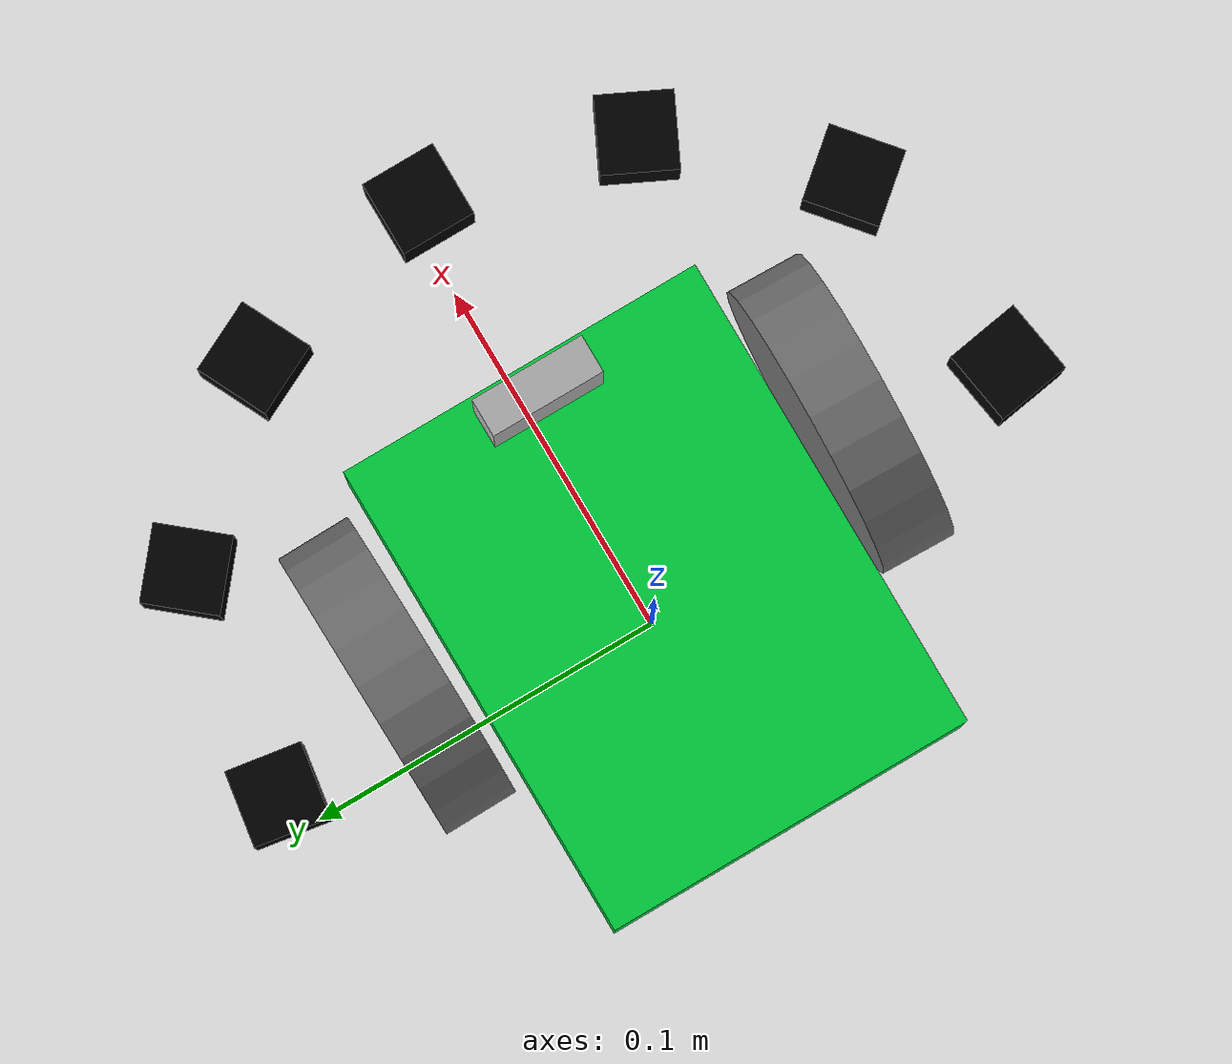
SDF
<?xml version='1.0'?>
<sdf version='1.7'>
  <model name='jetbotV21'>
    <link name='chassis'>
      <pose>-0 0 0.090953 0 -0 0</pose>
      <inertial>
        <mass>1</mass>
        <pose>0 0 0 0 -0 0</pose>
        <inertia>
          <ixx>0.001</ixx>
          <ixy>0</ixy>
          <ixz>0</ixz>
          <iyy>0.001</iyy>
          <iyz>0</iyz>
          <izz>0.0022</izz>
        </inertia>
      </inertial>
      <self_collide>0</self_collide>
      <enable_wind>0</enable_wind>
      <kinematic>0</kinematic>
      <gravity>1</gravity>
      <visual name='visual'>
        <geometry>
          <box>
            <size>0.13 0.1 0.04</size>
          </box>
        </geometry>
        <material>
          <ambient>0.5 0.5 0.5 1</ambient>
          <diffuse>0 0.85 0.25 1</diffuse>
          <specular>0 0 0 1</specular>
          <emissive>0 0 0 1</emissive>
          <shader type='pixel'>
            <normal_map>__default__</normal_map>
          </shader>
          <script>
            <name>ModelPreview_1::chassis::visual_MATERIAL_</name>
            <uri>__default__</uri>
          </script>
        </material>
        <pose>0 0 0 0 -0 0</pose>
        <transparency>0</transparency>
        <cast_shadows>1</cast_shadows>
      </visual>
      <visual name='caster_visual'>
        <pose>-0.045 0 -0.0255 0 -0 0</pose>
        <geometry>
          <sphere>
            <radius>0.02</radius>
          </sphere>
        </geometry>
        <material>
          <shader type='pixel'>
            <normal_map>__default__</normal_map>
          </shader>
          <script>
            <name>ModelPreview_1::chassis::caster_visual_MATERIAL_</name>
            <uri>__default__</uri>
          </script>
          <ambient>0 0 0 1</ambient>
          <diffuse>0 0 0 1</diffuse>
          <specular>0 0 0 1</specular>
          <emissive>0 0 0 1</emissive>
        </material>
        <transparency>0</transparency>
        <cast_shadows>1</cast_shadows>
      </visual>
      <collision name='collision'>
        <laser_retro>0</laser_retro>
        <max_contacts>10</max_contacts>
        <pose>0 0 0 0 -0 0</pose>
        <geometry>
          <box>
            <size>0.13 0.1 0.04</size>
          </box>
        </geometry>
        <surface>
          <friction>
            <ode>
              <mu>1</mu>
              <mu2>1</mu2>
              <fdir1>0 0 0</fdir1>
              <slip1>0</slip1>
              <slip2>0</slip2>
            </ode>
            <torsional>
              <coefficient>1</coefficient>
              <patch_radius>0</patch_radius>
              <surface_radius>0</surface_radius>
              <use_patch_radius>1</use_patch_radius>
              <ode>
                <slip>0</slip>
              </ode>
            </torsional>
          </friction>
          <bounce>
            <restitution_coefficient>0</restitution_coefficient>
            <threshold>1e+06</threshold>
          </bounce>
          <contact>
            <collide_without_contact>0</collide_without_contact>
            <collide_without_contact_bitmask>1</collide_without_contact_bitmask>
            <collide_bitmask>1</collide_bitmask>
            <ode>
              <soft_cfm>0</soft_cfm>
              <soft_erp>0.2</soft_erp>
              <kp>1e+07</kp>
              <kd>10</kd>
              <max_vel>0.1</max_vel>
              <min_depth>0.001</min_depth>
            </ode>
            <bullet>
              <split_impulse>1</split_impulse>
              <split_impulse_penetration_threshold>-0.01</split_impulse_penetration_threshold>
              <soft_cfm>0</soft_cfm>
              <soft_erp>0.2</soft_erp>
              <kp>1e+07</kp>
              <kd>10</kd>
            </bullet>
          </contact>
        </surface>
      </collision>
      <collision name='caster_collision'>
        <laser_retro>0</laser_retro>
        <max_contacts>10</max_contacts>
        <pose>-0.045 0 -0.0255 0 -0 0</pose>
        <geometry>
          <sphere>
            <radius>0.02</radius>
          </sphere>
        </geometry>
        <surface>
          <friction>
            <ode>
              <mu>0.05</mu>
              <mu2>0.05</mu2>
              <fdir1>0 0 0</fdir1>
              <slip1>0.2</slip1>
              <slip2>0.2</slip2>
            </ode>
            <torsional>
              <coefficient>1</coefficient>
              <patch_radius>0</patch_radius>
              <surface_radius>0</surface_radius>
              <use_patch_radius>1</use_patch_radius>
              <ode>
                <slip>0</slip>
              </ode>
            </torsional>
          </friction>
          <bounce>
            <restitution_coefficient>0</restitution_coefficient>
            <threshold>1e+06</threshold>
          </bounce>
          <contact>
            <collide_without_contact>0</collide_without_contact>
            <collide_without_contact_bitmask>1</collide_without_contact_bitmask>
            <collide_bitmask>1</collide_bitmask>
            <ode>
              <soft_cfm>1e-05</soft_cfm>
              <soft_erp>0.2</soft_erp>
              <kp>1e+06</kp>
              <kd>10</kd>
              <max_vel>0.1</max_vel>
              <min_depth>0.001</min_depth>
            </ode>
            <bullet>
              <split_impulse>1</split_impulse>
              <split_impulse_penetration_threshold>-0.01</split_impulse_penetration_threshold>
              <soft_cfm>1e-05</soft_cfm>
              <soft_erp>0.2</soft_erp>
              <kp>1e+06</kp>
              <kd>10</kd>
            </bullet>
          </contact>
        </surface>
      </collision>
    </link>
    <link name='left_wheel'>
      <pose>0.01713 0.063907 0.083835 -0.190935 1.57071 1.39626</pose>
      <self_collide>0</self_collide>
      <inertial>
        <pose>0 0 0 0 -0 0</pose>
        <inertia>
          <ixx>5e-05</ixx>
          <ixy>0</ixy>
          <ixz>0</ixz>
          <iyy>5e-05</iyy>
          <iyz>0</iyz>
          <izz>5e-05</izz>
        </inertia>
        <mass>0.08</mass>
      </inertial>
      <enable_wind>0</enable_wind>
      <kinematic>0</kinematic>
      <gravity>1</gravity>
      <visual name='visual'>
        <geometry>
          <cylinder>
            <radius>0.04</radius>
            <length>0.02</length>
          </cylinder>
        </geometry>
        <material>
          <ambient>0.35 0.35 0.35 1</ambient>
          <diffuse>0.45 0.45 0.45 1</diffuse>
          <specular>0 0 0 1</specular>
          <emissive>0 0 0 1</emissive>
          <shader type='pixel'>
            <normal_map>__default__</normal_map>
          </shader>
          <script>
            <name>ModelPreview_1::left_wheel::visual_MATERIAL_</name>
            <uri>__default__</uri>
          </script>
        </material>
        <pose>0 0 0 0 -0 0</pose>
        <transparency>0</transparency>
        <cast_shadows>1</cast_shadows>
      </visual>
      <collision name='collision'>
        <laser_retro>0</laser_retro>
        <max_contacts>10</max_contacts>
        <pose>0 0 0 0 -0 0</pose>
        <geometry>
          <cylinder>
            <radius>0.04</radius>
            <length>0.02</length>
          </cylinder>
        </geometry>
        <surface>
          <friction>
            <ode>
              <mu>1</mu>
              <mu2>1</mu2>
              <fdir1>0 0 0</fdir1>
              <slip1>0</slip1>
              <slip2>0</slip2>
            </ode>
            <torsional>
              <coefficient>1</coefficient>
              <patch_radius>0</patch_radius>
              <surface_radius>0</surface_radius>
              <use_patch_radius>1</use_patch_radius>
              <ode>
                <slip>0</slip>
              </ode>
            </torsional>
          </friction>
          <bounce>
            <restitution_coefficient>0</restitution_coefficient>
            <threshold>1e+06</threshold>
          </bounce>
          <contact>
            <collide_without_contact>0</collide_without_contact>
            <collide_without_contact_bitmask>1</collide_without_contact_bitmask>
            <collide_bitmask>1</collide_bitmask>
            <ode>
              <soft_cfm>1e-05</soft_cfm>
              <soft_erp>0.2</soft_erp>
              <kp>1e+06</kp>
              <kd>10</kd>
              <max_vel>0.1</max_vel>
              <min_depth>0.001</min_depth>
            </ode>
            <bullet>
              <split_impulse>1</split_impulse>
              <split_impulse_penetration_threshold>-0.01</split_impulse_penetration_threshold>
              <soft_cfm>1e-05</soft_cfm>
              <soft_erp>0.2</soft_erp>
              <kp>1e+06</kp>
              <kd>10</kd>
            </bullet>
          </contact>
        </surface>
      </collision>
    </link>
    <link name='right_wheel'>
      <pose>0.01713 -0.063907 0.083835 -0.145297 1.57071 1.39626</pose>
      <self_collide>0</self_collide>
      <inertial>
        <pose>0 0 0 0 -0 0</pose>
        <inertia>
          <ixx>5e-05</ixx>
          <ixy>0</ixy>
          <ixz>0</ixz>
          <iyy>5e-05</iyy>
          <iyz>0</iyz>
          <izz>5e-05</izz>
        </inertia>
        <mass>0.08</mass>
      </inertial>
      <enable_wind>0</enable_wind>
      <kinematic>0</kinematic>
      <gravity>1</gravity>
      <visual name='visual'>
        <geometry>
          <cylinder>
            <radius>0.04</radius>
            <length>0.02</length>
          </cylinder>
        </geometry>
        <material>
          <ambient>0.35 0.35 0.35 1</ambient>
          <diffuse>0.45 0.45 0.45 1</diffuse>
          <specular>0 0 0 1</specular>
          <emissive>0 0 0 1</emissive>
          <shader type='pixel'>
            <normal_map>__default__</normal_map>
          </shader>
          <script>
            <name>ModelPreview_1::right_wheel::visual_MATERIAL_</name>
            <uri>__default__</uri>
          </script>
        </material>
        <pose>0 0 0 0 -0 0</pose>
        <transparency>0</transparency>
        <cast_shadows>1</cast_shadows>
      </visual>
      <collision name='collision'>
        <laser_retro>0</laser_retro>
        <max_contacts>10</max_contacts>
        <pose>0 0 0 0 -0 0</pose>
        <geometry>
          <cylinder>
            <radius>0.04</radius>
            <length>0.02</length>
          </cylinder>
        </geometry>
        <surface>
          <friction>
            <ode>
              <mu>1</mu>
              <mu2>1</mu2>
              <fdir1>0 0 0</fdir1>
              <slip1>0</slip1>
              <slip2>0</slip2>
            </ode>
            <torsional>
              <coefficient>1</coefficient>
              <patch_radius>0</patch_radius>
              <surface_radius>0</surface_radius>
              <use_patch_radius>1</use_patch_radius>
              <ode>
                <slip>0</slip>
              </ode>
            </torsional>
          </friction>
          <bounce>
            <restitution_coefficient>0</restitution_coefficient>
            <threshold>1e+06</threshold>
          </bounce>
          <contact>
            <collide_without_contact>0</collide_without_contact>
            <collide_without_contact_bitmask>1</collide_without_contact_bitmask>
            <collide_bitmask>1</collide_bitmask>
            <ode>
              <soft_cfm>1e-05</soft_cfm>
              <soft_erp>0.2</soft_erp>
              <kp>1e+06</kp>
              <kd>10</kd>
              <max_vel>0.1</max_vel>
              <min_depth>0.001</min_depth>
            </ode>
            <bullet>
              <split_impulse>1</split_impulse>
              <split_impulse_penetration_threshold>-0.01</split_impulse_penetration_threshold>
              <soft_cfm>1e-05</soft_cfm>
              <soft_erp>0.2</soft_erp>
              <kp>1e+06</kp>
              <kd>10</kd>
            </bullet>
          </contact>
        </surface>
      </collision>
    </link>
    <link name='ultrasonic_front_link'>
      <pose>0.113841 0 0.098848 0 -0 0</pose>
      <sensor name='ultrasonic_front' type='ray'>
        <pose>0 0 0 0 -0 0</pose>
        <always_on>1</always_on>
        <visualize>1</visualize>
        <update_rate>30</update_rate>
        <ray>
          <scan>
            <horizontal>
              <samples>4</samples>
              <min_angle>-0.174533</min_angle>
              <max_angle>0.174533</max_angle>
              <resolution>1</resolution>
              <angle_increment>0.0698131701</angle_increment>
            </horizontal>
            <vertical>
              <samples>4</samples>
              <min_angle>-0.0349066</min_angle>
              <max_angle>0.0349066</max_angle>
              <angle_increment>0.004363323</angle_increment>
            </vertical>
          </scan>
          <range>
            <min>0.1</min>
            <max>8</max>
            <resolution>0.2</resolution>
          </range>
          <noise>
            <type>gaussian</type>
            <mean>0</mean>
            <stddev>0.05</stddev>
          </noise>
        </ray>
        <plugin name='gazebo_ros_range_front' filename='libgazebo_ros_ray_sensor.so'>
          <ros>
            <remapping>~/out:=ultrasonic_front</remapping>
            <namespace>jetbotV21</namespace>
          </ros>
          <output_type>sensor_msgs/Range</output_type>
          <frame_name>ultrasonic_front_link</frame_name>
          <topic>/jetbot/ultrasonic_front</topic>
        </plugin>
      </sensor>
      <self_collide>0</self_collide>
      <inertial>
        <pose>0 0 0 0 -0 0</pose>
        <inertia>
          <ixx>1e-06</ixx>
          <ixy>0</ixy>
          <ixz>0</ixz>
          <iyy>1e-06</iyy>
          <iyz>0</iyz>
          <izz>1e-06</izz>
        </inertia>
        <mass>0.001</mass>
      </inertial>
      <enable_wind>0</enable_wind>
      <kinematic>0</kinematic>
      <gravity>1</gravity>
      <visual name='visual'>
        <geometry>
          <box>
            <size>0.02 0.02 0.02</size>
          </box>
        </geometry>
        <material>
          <ambient>0 0 1 1</ambient>
          <shader type='pixel'>
            <normal_map>__default__</normal_map>
          </shader>
          <script>
            <name>ModelPreview_1::ultrasonic_front_link::visual_MATERIAL_</name>
            <uri>__default__</uri>
          </script>
          <diffuse>0 0 0 1</diffuse>
          <specular>0 0 0 1</specular>
          <emissive>0 0 0 1</emissive>
        </material>
        <pose>0 0 0 0 -0 0</pose>
        <transparency>0</transparency>
        <cast_shadows>1</cast_shadows>
      </visual>
    </link>
    <link name='ultrasonic_left_0_link'>
      <pose>0.100627 0.05457 0.098848 0 -0 0.454399</pose>
      <sensor name='ultrasonic_left_0' type='ray'>
        <pose>0 0 0 0 -0 0</pose>
        <always_on>1</always_on>
        <visualize>1</visualize>
        <update_rate>30</update_rate>
        <ray>
          <scan>
            <horizontal>
              <samples>4</samples>
              <min_angle>-0.174533</min_angle>
              <max_angle>0.174533</max_angle>
              <resolution>1</resolution>
              <angle_increment>0.0698131701</angle_increment>
            </horizontal>
            <vertical>
              <samples>4</samples>
              <min_angle>-0.0349066</min_angle>
              <max_angle>0.0349066</max_angle>
              <angle_increment>0.004363323</angle_increment>
            </vertical>
          </scan>
          <range>
            <min>0.1</min>
            <max>8</max>
            <resolution>0.2</resolution>
          </range>
          <noise>
            <type>gaussian</type>
            <mean>0</mean>
            <stddev>0.05</stddev>
          </noise>
        </ray>
        <plugin name='gazebo_ros_range_left_0' filename='libgazebo_ros_ray_sensor.so'>
          <ros>
            <remapping>~/out:=ultrasonic_left_0</remapping>
            <namespace>jetbotV21</namespace>
          </ros>
          <output_type>sensor_msgs/Range</output_type>
          <frame_name>ultrasonic_left_0_link</frame_name>
        </plugin>
      </sensor>
      <self_collide>0</self_collide>
      <inertial>
        <pose>0 0 0 0 -0 0</pose>
        <inertia>
          <ixx>1e-06</ixx>
          <ixy>0</ixy>
          <ixz>0</ixz>
          <iyy>1e-06</iyy>
          <iyz>0</iyz>
          <izz>1e-06</izz>
        </inertia>
        <mass>0.001</mass>
      </inertial>
      <enable_wind>0</enable_wind>
      <kinematic>0</kinematic>
      <gravity>1</gravity>
      <visual name='visual'>
        <geometry>
          <box>
            <size>0.02 0.02 0.02</size>
          </box>
        </geometry>
        <material>
          <ambient>1 0 0 1</ambient>
          <shader type='pixel'>
            <normal_map>__default__</normal_map>
          </shader>
          <script>
            <name>ModelPreview_1::ultrasonic_left_0_link::visual_MATERIAL_</name>
            <uri>__default__</uri>
          </script>
          <diffuse>0 0 0 1</diffuse>
          <specular>0 0 0 1</specular>
          <emissive>0 0 0 1</emissive>
        </material>
        <pose>0 0 0 0 -0 0</pose>
        <transparency>0</transparency>
        <cast_shadows>1</cast_shadows>
      </visual>
    </link>
    <link name='ultrasonic_left_1_link'>
      <pose>0.0643 0.09502 0.098848 0 -0 0.873931</pose>
      <sensor name='ultrasonic_left_1' type='ray'>
        <pose>0 0 0 0 -0 0</pose>
        <always_on>1</always_on>
        <visualize>1</visualize>
        <update_rate>30</update_rate>
        <ray>
          <scan>
            <horizontal>
              <samples>4</samples>
              <min_angle>-0.174533</min_angle>
              <max_angle>0.174533</max_angle>
              <resolution>1</resolution>
              <angle_increment>0.0698131701</angle_increment>
            </horizontal>
            <vertical>
              <samples>4</samples>
              <min_angle>-0.0349066</min_angle>
              <max_angle>0.0349066</max_angle>
              <angle_increment>0.004363323</angle_increment>
            </vertical>
          </scan>
          <range>
            <min>0.1</min>
            <max>8</max>
            <resolution>0.2</resolution>
          </range>
          <noise>
            <type>gaussian</type>
            <mean>0</mean>
            <stddev>0.05</stddev>
          </noise>
        </ray>
        <plugin name='gazebo_ros_range_left_1' filename='libgazebo_ros_ray_sensor.so'>
          <ros>
            <remapping>~/out:=ultrasonic_left_1</remapping>
            <namespace>jetbotV21</namespace>
          </ros>
          <output_type>sensor_msgs/Range</output_type>
          <frame_name>ultrasonic_left_1_link</frame_name>
        </plugin>
      </sensor>
      <self_collide>0</self_collide>
      <inertial>
        <pose>0 0 0 0 -0 0</pose>
        <inertia>
          <ixx>1e-06</ixx>
          <ixy>0</ixy>
          <ixz>0</ixz>
          <iyy>1e-06</iyy>
          <iyz>0</iyz>
          <izz>1e-06</izz>
        </inertia>
        <mass>0.001</mass>
      </inertial>
      <enable_wind>0</enable_wind>
      <kinematic>0</kinematic>
      <gravity>1</gravity>
      <visual name='visual'>
        <geometry>
          <box>
            <size>0.02 0.02 0.02</size>
          </box>
        </geometry>
        <material>
          <ambient>1 0 0 1</ambient>
          <shader type='pixel'>
            <normal_map>__default__</normal_map>
          </shader>
          <script>
            <name>ModelPreview_1::ultrasonic_left_1_link::visual_MATERIAL_</name>
            <uri>__default__</uri>
          </script>
          <diffuse>0 0 0 1</diffuse>
          <specular>0 0 0 1</specular>
          <emissive>0 0 0 1</emissive>
        </material>
        <pose>0 0 0 0 -0 0</pose>
        <transparency>0</transparency>
        <cast_shadows>1</cast_shadows>
      </visual>
    </link>
    <link name='ultrasonic_left_2_link'>
      <pose>0.005425 0.103814 0.098848 0 -0 1.41232</pose>
      <sensor name='ultrasonic_left_2' type='ray'>
        <pose>0 0 0 0 -0 0</pose>
        <always_on>1</always_on>
        <visualize>1</visualize>
        <update_rate>30</update_rate>
        <ray>
          <scan>
            <horizontal>
              <samples>4</samples>
              <min_angle>-0.174533</min_angle>
              <max_angle>0.174533</max_angle>
              <resolution>1</resolution>
              <angle_increment>0.0698131701</angle_increment>
            </horizontal>
            <vertical>
              <samples>4</samples>
              <min_angle>-0.0349066</min_angle>
              <max_angle>0.0349066</max_angle>
              <angle_increment>0.004363323</angle_increment>
            </vertical>
          </scan>
          <range>
            <min>0.1</min>
            <max>8</max>
            <resolution>0.2</resolution>
          </range>
          <noise>
            <type>gaussian</type>
            <mean>0</mean>
            <stddev>0.05</stddev>
          </noise>
        </ray>
        <plugin name='gazebo_ros_range_left_2' filename='libgazebo_ros_ray_sensor.so'>
          <ros>
            <remapping>~/out:=ultrasonic_left_2</remapping>
            <namespace>jetbotV21</namespace>
          </ros>
          <output_type>sensor_msgs/Range</output_type>
          <frame_name>ultrasonic_left_2_link</frame_name>
        </plugin>
      </sensor>
      <self_collide>0</self_collide>
      <inertial>
        <pose>0 0 0 0 -0 0</pose>
        <inertia>
          <ixx>1e-06</ixx>
          <ixy>0</ixy>
          <ixz>0</ixz>
          <iyy>1e-06</iyy>
          <iyz>0</iyz>
          <izz>1e-06</izz>
        </inertia>
        <mass>0.001</mass>
      </inertial>
      <enable_wind>0</enable_wind>
      <kinematic>0</kinematic>
      <gravity>1</gravity>
      <visual name='visual'>
        <geometry>
          <box>
            <size>0.02 0.02 0.02</size>
          </box>
        </geometry>
        <material>
          <ambient>1 0 0 1</ambient>
          <shader type='pixel'>
            <normal_map>__default__</normal_map>
          </shader>
          <script>
            <name>ModelPreview_1::ultrasonic_left_2_link::visual_MATERIAL_</name>
            <uri>__default__</uri>
          </script>
          <diffuse>0 0 0 1</diffuse>
          <specular>0 0 0 1</specular>
          <emissive>0 0 0 1</emissive>
        </material>
        <pose>0 0 0 0 -0 0</pose>
        <transparency>0</transparency>
        <cast_shadows>1</cast_shadows>
      </visual>
    </link>
    <link name='ultrasonic_right_0_link'>
      <pose>0.100627 -0.05457 0.098848 0 0 -0.454399</pose>
      <sensor name='ultrasonic_right_0' type='ray'>
        <pose>0 0 0 0 -0 0</pose>
        <always_on>1</always_on>
        <visualize>1</visualize>
        <update_rate>30</update_rate>
        <ray>
          <scan>
            <horizontal>
              <samples>4</samples>
              <min_angle>-0.174533</min_angle>
              <max_angle>0.174533</max_angle>
              <resolution>1</resolution>
              <angle_increment>0.0698131701</angle_increment>
            </horizontal>
            <vertical>
              <samples>4</samples>
              <min_angle>-0.0349066</min_angle>
              <max_angle>0.0349066</max_angle>
              <angle_increment>0.004363323</angle_increment>
            </vertical>
          </scan>
          <range>
            <min>0.1</min>
            <max>8</max>
            <resolution>0.2</resolution>
          </range>
          <noise>
            <type>gaussian</type>
            <mean>0</mean>
            <stddev>0.05</stddev>
          </noise>
        </ray>
        <plugin name='gazebo_ros_range_right_0' filename='libgazebo_ros_ray_sensor.so'>
          <ros>
            <remapping>~/out:=ultrasonic_right_0</remapping>
            <namespace>jetbotV21</namespace>
          </ros>
          <output_type>sensor_msgs/Range</output_type>
          <frame_name>ultrasonic_right_0_link</frame_name>
          <topic>/jetbot/ultrasonic_right_0</topic>
        </plugin>
      </sensor>
      <self_collide>0</self_collide>
      <inertial>
        <pose>0 0 0 0 -0 0</pose>
        <inertia>
          <ixx>1e-06</ixx>
          <ixy>0</ixy>
          <ixz>0</ixz>
          <iyy>1e-06</iyy>
          <iyz>0</iyz>
          <izz>1e-06</izz>
        </inertia>
        <mass>0.001</mass>
      </inertial>
      <enable_wind>0</enable_wind>
      <kinematic>0</kinematic>
      <gravity>1</gravity>
      <visual name='visual'>
        <geometry>
          <box>
            <size>0.02 0.02 0.02</size>
          </box>
        </geometry>
        <material>
          <ambient>0 1 0 1</ambient>
          <shader type='pixel'>
            <normal_map>__default__</normal_map>
          </shader>
          <script>
            <name>ModelPreview_1::ultrasonic_right_0_link::visual_MATERIAL_</name>
            <uri>__default__</uri>
          </script>
          <diffuse>0 0 0 1</diffuse>
          <specular>0 0 0 1</specular>
          <emissive>0 0 0 1</emissive>
        </material>
        <pose>0 0 0 0 -0 0</pose>
        <transparency>0</transparency>
        <cast_shadows>1</cast_shadows>
      </visual>
    </link>
    <link name='ultrasonic_right_1_link'>
      <pose>0.0643 -0.09502 0.098848 0 0 -0.873931</pose>
      <sensor name='ultrasonic_right_1' type='ray'>
        <pose>0 0 0 0 -0 0</pose>
        <always_on>1</always_on>
        <visualize>1</visualize>
        <update_rate>30</update_rate>
        <ray>
          <scan>
            <horizontal>
              <samples>4</samples>
              <min_angle>-0.174533</min_angle>
              <max_angle>0.174533</max_angle>
              <resolution>1</resolution>
              <angle_increment>0.0698131701</angle_increment>
            </horizontal>
            <vertical>
              <samples>4</samples>
              <min_angle>-0.0349066</min_angle>
              <max_angle>0.0349066</max_angle>
              <angle_increment>0.004363323</angle_increment>
            </vertical>
          </scan>
          <range>
            <min>0.1</min>
            <max>8</max>
            <resolution>0.2</resolution>
          </range>
          <noise>
            <type>gaussian</type>
            <mean>0</mean>
            <stddev>0.05</stddev>
          </noise>
        </ray>
        <plugin name='gazebo_ros_range_right_1' filename='libgazebo_ros_ray_sensor.so'>
          <ros>
            <remapping>~/out:=ultrasonic_right_1</remapping>
            <namespace>jetbotV21</namespace>
          </ros>
          <output_type>sensor_msgs/Range</output_type>
          <frame_name>ultrasonic_right_1_link</frame_name>
          <topic>/jetbot/ultrasonic_right_1</topic>
        </plugin>
      </sensor>
      <self_collide>0</self_collide>
      <inertial>
        <pose>0 0 0 0 -0 0</pose>
        <inertia>
          <ixx>1e-06</ixx>
          <ixy>0</ixy>
          <ixz>0</ixz>
          <iyy>1e-06</iyy>
          <iyz>0</iyz>
          <izz>1e-06</izz>
        </inertia>
        <mass>0.001</mass>
      </inertial>
      <enable_wind>0</enable_wind>
      <kinematic>0</kinematic>
      <gravity>1</gravity>
      <visual name='visual'>
        <geometry>
          <box>
            <size>0.02 0.02 0.02</size>
          </box>
        </geometry>
        <material>
          <ambient>0 1 0 1</ambient>
          <shader type='pixel'>
            <normal_map>__default__</normal_map>
          </shader>
          <script>
            <name>ModelPreview_1::ultrasonic_right_1_link::visual_MATERIAL_</name>
            <uri>__default__</uri>
          </script>
          <diffuse>0 0 0 1</diffuse>
          <specular>0 0 0 1</specular>
          <emissive>0 0 0 1</emissive>
        </material>
        <pose>0 0 0 0 -0 0</pose>
        <transparency>0</transparency>
        <cast_shadows>1</cast_shadows>
      </visual>
    </link>
    <link name='ultrasonic_right_2_link'>
      <pose>0.005425 -0.103814 0.098848 0 -0 -1.41232</pose>
      <sensor name='ultrasonic_right_2' type='ray'>
        <pose>0 0 0 0 -0 0</pose>
        <always_on>1</always_on>
        <visualize>1</visualize>
        <update_rate>30</update_rate>
        <ray>
          <scan>
            <horizontal>
              <samples>4</samples>
              <min_angle>-0.174533</min_angle>
              <max_angle>0.174533</max_angle>
              <resolution>1</resolution>
              <angle_increment>0.0698131701</angle_increment>
            </horizontal>
            <vertical>
              <samples>4</samples>
              <min_angle>-0.0349066</min_angle>
              <max_angle>0.0349066</max_angle>
              <angle_increment>0.004363323</angle_increment>
            </vertical>
          </scan>
          <range>
            <min>0.1</min>
            <max>8</max>
            <resolution>0.2</resolution>
          </range>
          <noise>
            <type>gaussian</type>
            <mean>0</mean>
            <stddev>0.05</stddev>
          </noise>
        </ray>
        <plugin name='gazebo_ros_range_right_2' filename='libgazebo_ros_ray_sensor.so'>
          <ros>
            <remapping>~/out:=ultrasonic_right_2</remapping>
            <namespace>jetbotV21</namespace>
          </ros>
          <output_type>sensor_msgs/Range</output_type>
          <frame_name>ultrasonic_right_2_link</frame_name>
          <topic>/jetbot/ultrasonic_right_2</topic>
        </plugin>
      </sensor>
      <self_collide>0</self_collide>
      <inertial>
        <pose>0 0 0 0 -0 0</pose>
        <inertia>
          <ixx>1e-06</ixx>
          <ixy>0</ixy>
          <ixz>0</ixz>
          <iyy>1e-06</iyy>
          <iyz>0</iyz>
          <izz>1e-06</izz>
        </inertia>
        <mass>0.001</mass>
      </inertial>
      <enable_wind>0</enable_wind>
      <kinematic>0</kinematic>
      <gravity>1</gravity>
      <visual name='visual'>
        <geometry>
          <box>
            <size>0.02 0.02 0.02</size>
          </box>
        </geometry>
        <material>
          <ambient>0 1 0 1</ambient>
          <shader type='pixel'>
            <normal_map>__default__</normal_map>
          </shader>
          <script>
            <name>ModelPreview_1::ultrasonic_right_2_link::visual_MATERIAL_</name>
            <uri>__default__</uri>
          </script>
          <diffuse>0 0 0 1</diffuse>
          <specular>0 0 0 1</specular>
          <emissive>0 0 0 1</emissive>
        </material>
        <pose>0 0 0 0 -0 0</pose>
        <transparency>0</transparency>
        <cast_shadows>1</cast_shadows>
      </visual>
    </link>
    <model name='camera'>
      <pose>0.05311 0.00127 0.165276 0 0 0</pose>
      <link name='link'>
        <inertial>
          <mass>0.001</mass>
          <inertia>
            <ixx>1e-06</ixx>
            <iyy>1e-06</iyy>
            <izz>1e-06</izz>
            <ixy>0</ixy>
            <ixz>0</ixz>
            <iyz>0</iyz>
          </inertia>
        </inertial>
        <collision name='collision'>
          <geometry>
            <box>
              <size>0.01 0.03 0.03</size>
            </box>
          </geometry>
        </collision>
        <visual name='visual'>
          <geometry>
            <box>
              <size>0.01 0.03 0.03</size>
            </box>
          </geometry>
        </visual>
        <sensor name='camera' type='camera'>
          <camera>
            <horizontal_fov>1.57</horizontal_fov>
            <image>
              <width>640</width>
              <height>480</height>
              <format>R8G8B8</format>
            </image>
            <clip>
              <near>0.05</near>
              <far>100</far>
            </clip>
          </camera>
          <always_on>1</always_on>
          <update_rate>20</update_rate>
          <visualize>1</visualize>
          <plugin name="jetbot_camera_plugin" filename="libgazebo_ros_camera.so">
            <ros>
              <namespace>/jetbotV21</namespace>
              <remapping>image_raw:=image_raw</remapping>
              <remapping>camera_info:=camera_info</remapping>
            </ros>
            <camera_name>camera</camera_name>
            <frame_name>camera_link</frame_name>
          </plugin>
        </sensor>
      </link>
    </model>
    <joint name='chassis_JOINT_0' type='fixed'>
      <parent>chassis</parent>
      <child>camera::link</child>
      <pose>0 0 0 0 -0 0</pose>
      <physics>
        <ode>
          <limit>
            <cfm>0</cfm>
            <erp>0.2</erp>
          </limit>
          <suspension>
            <cfm>0</cfm>
            <erp>0.2</erp>
          </suspension>
        </ode>
      </physics>
    </joint>
    <joint name='left_wheel_hinge' type='revolute'>
      <parent>chassis</parent>
      <child>left_wheel</child>
      <pose>0 0 -0.03 0 -0 0</pose>
      <axis>
        <xyz>9.6e-05 9.6e-05 1</xyz>
        <limit>
          <lower>-1e+16</lower>
          <upper>1e+16</upper>
          <effort>-1</effort>
          <velocity>-1</velocity>
        </limit>
        <dynamics>
          <spring_reference>0</spring_reference>
          <spring_stiffness>0</spring_stiffness>
          <damping>0.02</damping>
          <friction>0.001</friction>
        </dynamics>
      </axis>
      <physics>
        <ode>
          <limit>
            <cfm>0</cfm>
            <erp>0.2</erp>
          </limit>
          <suspension>
            <cfm>0</cfm>
            <erp>0.2</erp>
          </suspension>
        </ode>
      </physics>
    </joint>
    <joint name='right_wheel_hinge' type='revolute'>
      <parent>chassis</parent>
      <child>right_wheel</child>
      <pose>0 0 0.03 0 -0 0</pose>
      <axis>
        <xyz>9.6e-05 9.6e-05 1</xyz>
        <limit>
          <lower>-1e+16</lower>
          <upper>1e+16</upper>
          <effort>-1</effort>
          <velocity>-1</velocity>
        </limit>
        <dynamics>
          <spring_reference>0</spring_reference>
          <spring_stiffness>0</spring_stiffness>
          <damping>0.02</damping>
          <friction>0.001</friction>
        </dynamics>
      </axis>
      <physics>
        <ode>
          <limit>
            <cfm>0</cfm>
            <erp>0.2</erp>
          </limit>
          <suspension>
            <cfm>0</cfm>
            <erp>0.2</erp>
          </suspension>
        </ode>
      </physics>
    </joint>
    <joint name='ultrasonic_front_joint' type='fixed'>
      <parent>chassis</parent>
      <child>ultrasonic_front_link</child>
      <pose>0 0 0 0 -0 0</pose>
      <physics>
        <ode>
          <limit>
            <cfm>0</cfm>
            <erp>0.2</erp>
          </limit>
          <suspension>
            <cfm>0</cfm>
            <erp>0.2</erp>
          </suspension>
        </ode>
      </physics>
    </joint>
    <joint name='ultrasonic_left_0_joint' type='fixed'>
      <parent>chassis</parent>
      <child>ultrasonic_left_0_link</child>
      <pose>0 0 0 0 -0 0</pose>
      <physics>
        <ode>
          <limit>
            <cfm>0</cfm>
            <erp>0.2</erp>
          </limit>
          <suspension>
            <cfm>0</cfm>
            <erp>0.2</erp>
          </suspension>
        </ode>
      </physics>
    </joint>
    <joint name='ultrasonic_left_1_joint' type='fixed'>
      <parent>chassis</parent>
      <child>ultrasonic_left_1_link</child>
      <pose>0 0 0 0 -0 0</pose>
      <physics>
        <ode>
          <limit>
            <cfm>0</cfm>
            <erp>0.2</erp>
          </limit>
          <suspension>
            <cfm>0</cfm>
            <erp>0.2</erp>
          </suspension>
        </ode>
      </physics>
    </joint>
    <joint name='ultrasonic_left_2_joint' type='fixed'>
      <parent>chassis</parent>
      <child>ultrasonic_left_2_link</child>
      <pose>0 0 0 0 -0 0</pose>
      <physics>
        <ode>
          <limit>
            <cfm>0</cfm>
            <erp>0.2</erp>
          </limit>
          <suspension>
            <cfm>0</cfm>
            <erp>0.2</erp>
          </suspension>
        </ode>
      </physics>
    </joint>
    <joint name='ultrasonic_right_0_joint' type='fixed'>
      <parent>chassis</parent>
      <child>ultrasonic_right_0_link</child>
      <pose>0 0 0 0 -0 0</pose>
      <physics>
        <ode>
          <limit>
            <cfm>0</cfm>
            <erp>0.2</erp>
          </limit>
          <suspension>
            <cfm>0</cfm>
            <erp>0.2</erp>
          </suspension>
        </ode>
      </physics>
    </joint>
    <joint name='ultrasonic_right_1_joint' type='fixed'>
      <parent>chassis</parent>
      <child>ultrasonic_right_1_link</child>
      <pose>0 0 0 0 -0 0</pose>
      <physics>
        <ode>
          <limit>
            <cfm>0</cfm>
            <erp>0.2</erp>
          </limit>
          <suspension>
            <cfm>0</cfm>
            <erp>0.2</erp>
          </suspension>
        </ode>
      </physics>
    </joint>
    <joint name='ultrasonic_right_2_joint' type='fixed'>
      <parent>chassis</parent>
      <child>ultrasonic_right_2_link</child>
      <pose>0 0 0 0 -0 0</pose>
      <physics>
        <ode>
          <limit>
            <cfm>0</cfm>
            <erp>0.2</erp>
          </limit>
          <suspension>
            <cfm>0</cfm>
            <erp>0.2</erp>
          </suspension>
        </ode>
      </physics>
    </joint>
    <static>0</static>
    <allow_auto_disable>1</allow_auto_disable>
    <plugin name='diff_drive' filename='libgazebo_ros_diff_drive.so'>
      <ros>
        <namespace>jetbotV21</namespace>
        <remapping>cmd_vel:=cmd_vel</remapping>
        <remapping>odom:=odom</remapping>
      </ros>
      <left_joint>left_wheel_hinge</left_joint>
      <right_joint>right_wheel_hinge</right_joint>
      <wheel_separation>0.1278</wheel_separation>
      <wheel_diameter>0.08</wheel_diameter>
      <max_wheel_torque>1.5</max_wheel_torque>
      <max_wheel_acceleration>0.25</max_wheel_acceleration>
      <publish_odom>1</publish_odom>
      <publish_odom_tf>1</publish_odom_tf>
      <publish_wheel_tf>1</publish_wheel_tf>
      <odometry_frame>odom</odometry_frame>
      <robot_base_frame>chassis</robot_base_frame>
    </plugin>
  </model>
</sdf>
